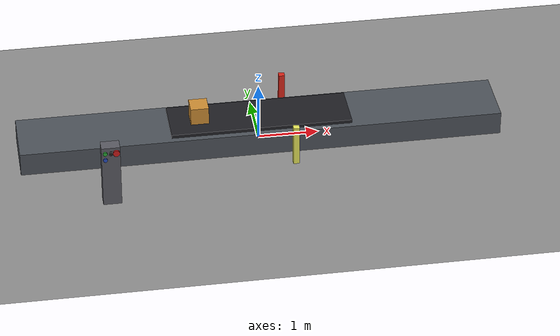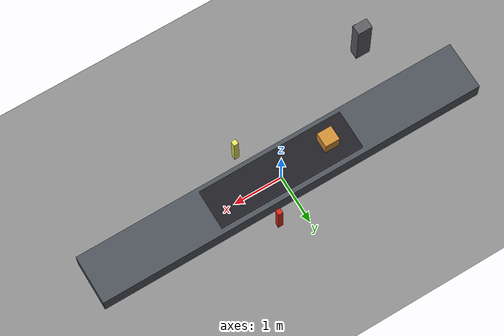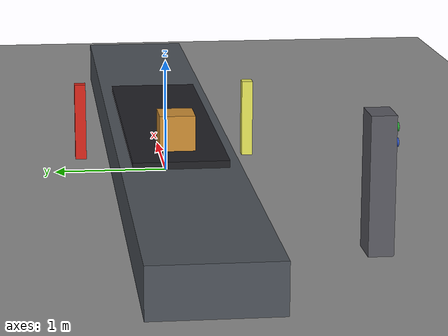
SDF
<?xml version="1.0" ?>
<sdf version="1.8">
  <world name="cell">

    <!-- Small fixed step: the product box is carried by belt friction and a
         coarse step makes that contact jittery. The world is tiny, so this
         still runs faster than real time headless. -->
    <physics type="ode">
      <max_step_size>0.002</max_step_size>
      <real_time_factor>1.0</real_time_factor>
      <real_time_update_rate>500</real_time_update_rate>
    </physics>

    <plugin name="gz::sim::systems::Physics" filename="libgz-sim-physics-system.so"/>
    <plugin name="gz::sim::systems::UserCommands" filename="libgz-sim-user-commands-system.so"/>
    <plugin name="gz::sim::systems::SceneBroadcaster" filename="libgz-sim-scene-broadcaster-system.so"/>
    <plugin name="gz::sim::systems::Sensors" filename="libgz-sim-sensors-system.so">
      <render_engine>ogre2</render_engine>
    </plugin>

    <scene>
      <ambient>1 1 1 1</ambient>
      <background>0.7 0.7 0.7 1</background>
      <shadows>false</shadows>
      <grid>false</grid>
    </scene>

    <light name="sun" type="directional">
      <cast_shadows>false</cast_shadows>
      <pose>0 0 10 0 0 0</pose>
      <diffuse>1.0 1.0 1.0 1</diffuse>
      <specular>0.2 0.2 0.2 1</specular>
      <direction>-0.3 0.3 -1.0</direction>
    </light>

    <gravity>0 0 -9.8</gravity>

    <!-- ============================ Floor ============================ -->
    <model name="Floor">
      <static>true</static>
      <link name="link">
        <collision name="collision">
          <geometry>
            <plane><normal>0 0 1</normal><size>20 20</size></plane>
          </geometry>
          <surface>
            <friction><ode><mu>1.0</mu><mu2>1.0</mu2></ode></friction>
          </surface>
        </collision>
        <visual name="visual">
          <geometry>
            <plane><normal>0 0 1</normal><size>20 20</size></plane>
          </geometry>
          <material>
            <ambient>0.55 0.55 0.55 1</ambient>
            <diffuse>0.55 0.55 0.55 1</diffuse>
          </material>
        </visual>
      </link>
    </model>

    <!-- ========================== Conveyor ============================ -->
    <model name="Conveyor">
      <static>false</static>
      <pose>0 0 0 0 0 0</pose>

      <link name="frame">
        <pose>0 0 0.20 0 0 0</pose>
        <inertial>
          <mass>200.0</mass>
          <inertia>
            <ixx>19.3333</ixx><ixy>0</ixy><ixz>0</ixz>
            <iyy>1069.3333</iyy><iyz>0</iyz><izz>1083.3333</izz>
          </inertia>
        </inertial>
        <collision name="collision">
          <geometry><box><size>8.0 1.0 0.40</size></box></geometry>
        </collision>
        <visual name="visual">
          <geometry><box><size>8.0 1.0 0.40</size></box></geometry>
          <material><ambient>0.30 0.32 0.35 1</ambient><diffuse>0.30 0.32 0.35 1</diffuse></material>
        </visual>
      </link>

      <link name="belt">
        <pose>0 0 0.43 0 0 0</pose>
        <inertial>
          <mass>20.0</mass>
          <inertia>
            <ixx>1.0727</ixx><ixy>0</ixy><ixz>0</ixz>
            <iyy>15.0060</iyy><iyz>0</iyz><izz>16.0667</izz>
          </inertia>
        </inertial>
        <collision name="collision">
          <geometry><box><size>3.0 0.80 0.06</size></box></geometry>
          <surface>
            <friction><ode><mu>1.2</mu><mu2>1.2</mu2></ode></friction>
            <contact><ode><kp>1e6</kp><kd>100.0</kd></ode></contact>
          </surface>
        </collision>
        <visual name="visual">
          <geometry><box><size>3.0 0.80 0.06</size></box></geometry>
          <material><ambient>0.12 0.12 0.14 1</ambient><diffuse>0.12 0.12 0.14 1</diffuse></material>
        </visual>
      </link>

      <!-- Conveyor frame is fixed equipment: bolted to the floor. -->
      <joint name="frame_anchor" type="fixed">
        <parent>world</parent>
        <child>frame</child>
      </joint>

      <!-- The belt drive axis. +velocity transports product towards +x. -->
      <joint name="belt_joint" type="prismatic">
        <parent>frame</parent>
        <child>belt</child>
        <axis>
          <xyz>1 0 0</xyz>
          <limit>
            <lower>-2.5</lower>
            <upper>2.5</upper>
            <effort>2000</effort>
            <velocity>2.0</velocity>
          </limit>
          <dynamics><damping>0.0</damping><friction>0.0</friction></dynamics>
        </axis>
      </joint>

      <!-- Raw actuator: belt surface velocity command, m/s, signed.
           No ramp, no interlock, no timer - the command is applied as given. -->
      <plugin filename="libgz-sim-joint-controller-system.so"
              name="gz::sim::systems::JointController">
        <joint_name>belt_joint</joint_name>
        <topic>/cell/conveyor/cmd_speed</topic>
        <initial_velocity>0.0</initial_velocity>
      </plugin>

      <!-- Raw encoder: belt joint position [m] and velocity [m/s]. -->
      <plugin filename="libgz-sim-joint-state-publisher-system.so"
              name="gz::sim::systems::JointStatePublisher">
        <joint_name>belt_joint</joint_name>
        <topic>/cell/conveyor/joint_state</topic>
      </plugin>
    </model>

    <!-- ========================= Product box ========================== -->
    <!-- The transported product. Starts on the belt, upstream of the beam. -->
    <model name="ProductBox">
      <pose>-1.0 0 0.61 0 0 0</pose>
      <link name="link">
        <inertial>
          <mass>2.0</mass>
          <inertia>
            <ixx>0.03</ixx><ixy>0</ixy><ixz>0</ixz>
            <iyy>0.03</iyy><iyz>0</iyz><izz>0.03</izz>
          </inertia>
        </inertial>
        <collision name="collision">
          <geometry><box><size>0.30 0.30 0.30</size></box></geometry>
          <surface>
            <friction><ode><mu>1.2</mu><mu2>1.2</mu2></ode></friction>
            <contact><ode><kp>1e6</kp><kd>100.0</kd></ode></contact>
          </surface>
        </collision>
        <visual name="visual">
          <geometry><box><size>0.30 0.30 0.30</size></box></geometry>
          <material><ambient>0.80 0.55 0.20 1</ambient><diffuse>0.80 0.55 0.20 1</diffuse></material>
        </visual>
      </link>

      <plugin filename="libgz-sim-pose-publisher-system.so"
              name="gz::sim::systems::PosePublisher">
        <publish_link_pose>false</publish_link_pose>
        <publish_collision_pose>false</publish_collision_pose>
        <publish_visual_pose>false</publish_visual_pose>
        <publish_model_pose>true</publish_model_pose>
        <publish_nested_model_pose>false</publish_nested_model_pose>
        <use_pose_vector_msg>true</use_pose_vector_msg>
        <static_publisher>false</static_publisher>
        <update_frequency>10</update_frequency>
      </plugin>
    </model>

    <!-- ======================= Product sensor ========================= -->
    <model name="ProductSensor">
      <static>true</static>
      <pose>0.50 0.75 0 0 0 0</pose>
      <link name="post">
        <collision name="collision">
          <pose>0 0 0.35 0 0 0</pose>
          <geometry><box><size>0.10 0.10 0.70</size></box></geometry>
        </collision>
        <visual name="visual">
          <pose>0 0 0.35 0 0 0</pose>
          <geometry><box><size>0.10 0.10 0.70</size></box></geometry>
          <material><ambient>0.85 0.15 0.10 1</ambient><diffuse>0.85 0.15 0.10 1</diffuse></material>
        </visual>

        <!-- Beam origin sits on the inner face of the post, aimed at -y. -->
        <sensor name="beam" type="gpu_lidar">
          <pose>0 -0.06 0.60 0 0 -1.5707963</pose>
          <always_on>1</always_on>
          <update_rate>30</update_rate>
          <visualize>false</visualize>
          <topic>/cell/product_sensor/scan</topic>
          <lidar>
            <scan>
              <horizontal>
                <samples>1</samples>
                <resolution>1</resolution>
                <min_angle>0.0</min_angle>
                <max_angle>0.0</max_angle>
              </horizontal>
              <vertical>
                <samples>1</samples>
                <resolution>1</resolution>
                <min_angle>0.0</min_angle>
                <max_angle>0.0</max_angle>
              </vertical>
            </scan>
            <range>
              <min>0.05</min>
              <max>3.0</max>
              <resolution>0.001</resolution>
            </range>
          </lidar>
        </sensor>
      </link>
    </model>

    <!-- Reflector the photo-eye beam terminates on when the belt is clear. -->
    <model name="SensorReflector">
      <static>true</static>
      <pose>0.50 -0.80 0 0 0 0</pose>
      <link name="post">
        <collision name="collision">
          <pose>0 0 0.35 0 0 0</pose>
          <geometry><box><size>0.10 0.10 0.70</size></box></geometry>
        </collision>
        <visual name="visual">
          <pose>0 0 0.35 0 0 0</pose>
          <geometry><box><size>0.10 0.10 0.70</size></box></geometry>
          <material><ambient>0.90 0.90 0.35 1</ambient><diffuse>0.90 0.90 0.35 1</diffuse></material>
        </visual>
      </link>
    </model>

    <!-- ======================= Operator panel ========================= -->
    <model name="OperatorPanel">
      <static>true</static>
      <pose>-2.60 -1.40 0 0 0 0</pose>
      <link name="link">
        <collision name="pedestal_collision">
          <pose>0 0 0.55 0 0 0</pose>
          <geometry><box><size>0.30 0.20 1.10</size></box></geometry>
        </collision>
        <visual name="pedestal_visual">
          <pose>0 0 0.55 0 0 0</pose>
          <geometry><box><size>0.30 0.20 1.10</size></box></geometry>
          <material><ambient>0.35 0.35 0.38 1</ambient><diffuse>0.35 0.35 0.38 1</diffuse></material>
        </visual>
        <visual name="start_button_visual">
          <pose>-0.09 -0.11 1.00 1.5707963 0 0</pose>
          <geometry><cylinder><radius>0.035</radius><length>0.02</length></cylinder></geometry>
          <material><ambient>0.15 0.65 0.20 1</ambient><diffuse>0.15 0.65 0.20 1</diffuse></material>
        </visual>
        <visual name="stop_button_visual">
          <pose>0.00 -0.11 1.00 1.5707963 0 0</pose>
          <geometry><cylinder><radius>0.035</radius><length>0.02</length></cylinder></geometry>
          <material><ambient>0.10 0.10 0.10 1</ambient><diffuse>0.10 0.10 0.10 1</diffuse></material>
        </visual>
        <visual name="process_stop_button_visual">
          <pose>0.09 -0.11 1.00 1.5707963 0 0</pose>
          <geometry><cylinder><radius>0.055</radius><length>0.03</length></cylinder></geometry>
          <material><ambient>0.80 0.10 0.10 1</ambient><diffuse>0.80 0.10 0.10 1</diffuse></material>
        </visual>
        <visual name="reset_button_visual">
          <pose>-0.09 -0.11 0.88 1.5707963 0 0</pose>
          <geometry><cylinder><radius>0.035</radius><length>0.02</length></cylinder></geometry>
          <material><ambient>0.15 0.30 0.75 1</ambient><diffuse>0.15 0.30 0.75 1</diffuse></material>
        </visual>
      </link>
    </model>

  </world>
</sdf>
